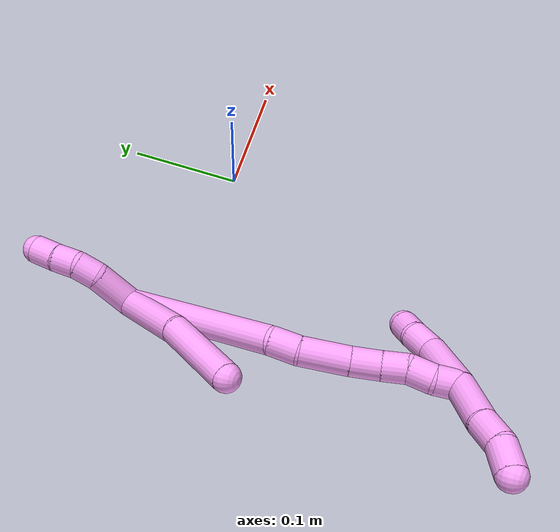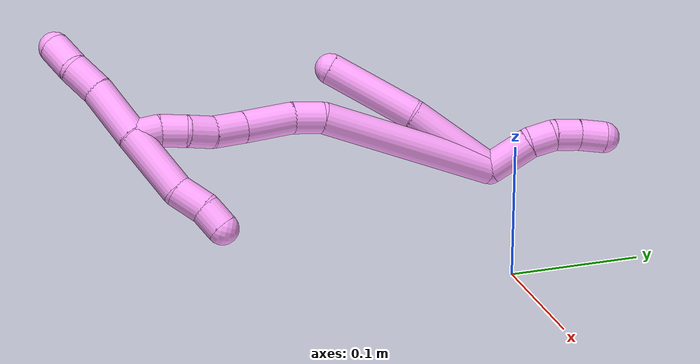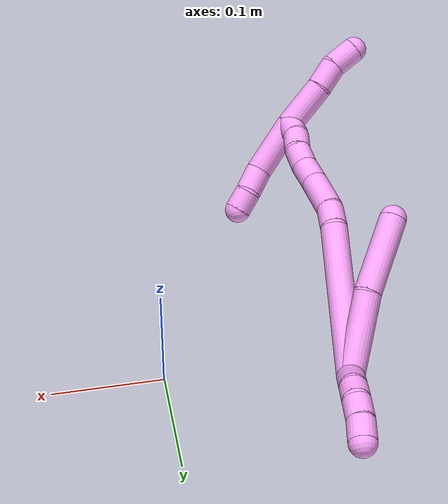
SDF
<sdf version="1.7">
 <world name="default">
  <model name="4">
   <static>0</static>
   <link name="4">
    <collision name="collision-cylinder-e_1_2_8">
     <pose>0.011732 0.008891 -0.034618 -2.89018 0.317152 -1.80409</pose>
     <geometry><cylinder><radius>0.0125</radius><length>0.075236</length></cylinder></geometry>
     <surface>
      <friction><ode><mu>1.16</mu><mu2>1.16</mu2><slip1>0</slip1><slip2>0</slip2></ode></friction>
      <contact><ode><kp>1e+06</kp><kd>1</kd><max_vel>0</max_vel><min_depth>0.001</min_depth></ode></contact>
     </surface>
    </collision>
    <visual name="visual-cylinder-e_1_2_8">
     <pose>0.011732 0.008891 -0.034618 -2.89018 0.317152 -1.80409</pose>
     <geometry><cylinder><radius>0.0125</radius><length>0.075236</length></cylinder></geometry>
     <material><ambient>1 0.65098 0.996078 1</ambient></material>
    </visual>
    <collision name="collision-cylinder-e_2_8_6">
     <pose>0.038847 0.020738 -0.103178 -3.05476 0.424118 -2.74337</pose>
     <geometry><cylinder><radius>0.0125</radius><length>0.074764</length></cylinder></geometry>
     <surface>
      <friction><ode><mu>1.16</mu><mu2>1.16</mu2><slip1>0</slip1><slip2>0</slip2></ode></friction>
      <contact><ode><kp>1e+06</kp><kd>1</kd><max_vel>0</max_vel><min_depth>0.001</min_depth></ode></contact>
     </surface>
    </collision>
    <visual name="visual-cylinder-e_2_8_6">
     <pose>0.038847 0.020738 -0.103178 -3.05476 0.424118 -2.74337</pose>
     <geometry><cylinder><radius>0.0125</radius><length>0.074764</length></cylinder></geometry>
     <material><ambient>1 0.65098 0.996078 1</ambient></material>
    </visual>
    <collision name="collision-cylinder-e_1_2_9">
     <pose>0.000677 0.015139 0.011486 -0.92173 0.035597 -0.017676</pose>
     <geometry><cylinder><radius>0.0125</radius><length>0.03803</length></cylinder></geometry>
     <surface>
      <friction><ode><mu>1.16</mu><mu2>1.16</mu2><slip1>0</slip1><slip2>0</slip2></ode></friction>
      <contact><ode><kp>1e+06</kp><kd>1</kd><max_vel>0</max_vel><min_depth>0.001</min_depth></ode></contact>
     </surface>
    </collision>
    <visual name="visual-cylinder-e_1_2_9">
     <pose>0.000677 0.015139 0.011486 -0.92173 0.035597 -0.017676</pose>
     <geometry><cylinder><radius>0.0125</radius><length>0.03803</length></cylinder></geometry>
     <material><ambient>1 0.65098 0.996078 1</ambient></material>
    </visual>
    <collision name="collision-cylinder-e_2_9_10">
     <pose>0.001946 0.035922 0.031271 -0.597313 0.059011 -0.018172</pose>
     <geometry><cylinder><radius>0.0125</radius><length>0.020109</length></cylinder></geometry>
     <surface>
      <friction><ode><mu>1.16</mu><mu2>1.16</mu2><slip1>0</slip1><slip2>0</slip2></ode></friction>
      <contact><ode><kp>1e+06</kp><kd>1</kd><max_vel>0</max_vel><min_depth>0.001</min_depth></ode></contact>
     </surface>
    </collision>
    <visual name="visual-cylinder-e_2_9_10">
     <pose>0.001946 0.035922 0.031271 -0.597313 0.059011 -0.018172</pose>
     <geometry><cylinder><radius>0.0125</radius><length>0.020109</length></cylinder></geometry>
     <material><ambient>1 0.65098 0.996078 1</ambient></material>
    </visual>
    <collision name="collision-cylinder-e_3_10_11">
     <pose>0.003308 0.044122 0.049378 -0.254845 0.075668 -0.009699</pose>
     <geometry><cylinder><radius>0.0125</radius><length>0.020328</length></cylinder></geometry>
     <surface>
      <friction><ode><mu>1.16</mu><mu2>1.16</mu2><slip1>0</slip1><slip2>0</slip2></ode></friction>
      <contact><ode><kp>1e+06</kp><kd>1</kd><max_vel>0</max_vel><min_depth>0.001</min_depth></ode></contact>
     </surface>
    </collision>
    <visual name="visual-cylinder-e_3_10_11">
     <pose>0.003308 0.044122 0.049378 -0.254845 0.075668 -0.009699</pose>
     <geometry><cylinder><radius>0.0125</radius><length>0.020328</length></cylinder></geometry>
     <material><ambient>1 0.65098 0.996078 1</ambient></material>
    </visual>
    <collision name="collision-cylinder-e_4_11_5">
     <pose>0.003804 0.048703 0.069757 -0.189302 -0.025311 0.002403</pose>
     <geometry><cylinder><radius>0.0125</radius><length>0.021533</length></cylinder></geometry>
     <surface>
      <friction><ode><mu>1.16</mu><mu2>1.16</mu2><slip1>0</slip1><slip2>0</slip2></ode></friction>
      <contact><ode><kp>1e+06</kp><kd>1</kd><max_vel>0</max_vel><min_depth>0.001</min_depth></ode></contact>
     </surface>
    </collision>
    <visual name="visual-cylinder-e_4_11_5">
     <pose>0.003804 0.048703 0.069757 -0.189302 -0.025311 0.002403</pose>
     <geometry><cylinder><radius>0.0125</radius><length>0.021533</length></cylinder></geometry>
     <material><ambient>1 0.65098 0.996078 1</ambient></material>
    </visual>
    <collision name="collision-cylinder-e_1_2_12">
     <pose>0.000494 0.002577 -0.072556 -3.10609 0.006798 -0.37832</pose>
     <geometry><cylinder><radius>0.0125</radius><length>0.145206</length></cylinder></geometry>
     <surface>
      <friction><ode><mu>1.16</mu><mu2>1.16</mu2><slip1>0</slip1><slip2>0</slip2></ode></friction>
      <contact><ode><kp>1e+06</kp><kd>1</kd><max_vel>0</max_vel><min_depth>0.001</min_depth></ode></contact>
     </surface>
    </collision>
    <visual name="visual-cylinder-e_1_2_12">
     <pose>0.000494 0.002577 -0.072556 -3.10609 0.006798 -0.37832</pose>
     <geometry><cylinder><radius>0.0125</radius><length>0.145206</length></cylinder></geometry>
     <material><ambient>1 0.65098 0.996078 1</ambient></material>
    </visual>
    <collision name="collision-cylinder-e_2_12_13">
     <pose>0.000181 0.002071 -0.156976 2.88731 -0.065672 -0.503045</pose>
     <geometry><cylinder><radius>0.0125</radius><length>0.024571</length></cylinder></geometry>
     <surface>
      <friction><ode><mu>1.16</mu><mu2>1.16</mu2><slip1>0</slip1><slip2>0</slip2></ode></friction>
      <contact><ode><kp>1e+06</kp><kd>1</kd><max_vel>0</max_vel><min_depth>0.001</min_depth></ode></contact>
     </surface>
    </collision>
    <visual name="visual-cylinder-e_2_12_13">
     <pose>0.000181 0.002071 -0.156976 2.88731 -0.065672 -0.503045</pose>
     <geometry><cylinder><radius>0.0125</radius><length>0.024571</length></cylinder></geometry>
     <material><ambient>1 0.65098 0.996078 1</ambient></material>
    </visual>
    <collision name="collision-cylinder-e_3_13_14">
     <pose>-0.006272 -0.007583 -0.187566 2.80414 -0.277244 -1.37247</pose>
     <geometry><cylinder><radius>0.0125</radius><length>0.041264</length></cylinder></geometry>
     <surface>
      <friction><ode><mu>1.16</mu><mu2>1.16</mu2><slip1>0</slip1><slip2>0</slip2></ode></friction>
      <contact><ode><kp>1e+06</kp><kd>1</kd><max_vel>0</max_vel><min_depth>0.001</min_depth></ode></contact>
     </surface>
    </collision>
    <visual name="visual-cylinder-e_3_13_14">
     <pose>-0.006272 -0.007583 -0.187566 2.80414 -0.277244 -1.37247</pose>
     <geometry><cylinder><radius>0.0125</radius><length>0.041264</length></cylinder></geometry>
     <material><ambient>1 0.65098 0.996078 1</ambient></material>
    </visual>
    <collision name="collision-cylinder-e_4_14_15">
     <pose>-0.015907 -0.017619 -0.217987 2.85349 -0.315935 -1.66431</pose>
     <geometry><cylinder><radius>0.0125</radius><length>0.025667</length></cylinder></geometry>
     <surface>
      <friction><ode><mu>1.16</mu><mu2>1.16</mu2><slip1>0</slip1><slip2>0</slip2></ode></friction>
      <contact><ode><kp>1e+06</kp><kd>1</kd><max_vel>0</max_vel><min_depth>0.001</min_depth></ode></contact>
     </surface>
    </collision>
    <visual name="visual-cylinder-e_4_14_15">
     <pose>-0.015907 -0.017619 -0.217987 2.85349 -0.315935 -1.66431</pose>
     <geometry><cylinder><radius>0.0125</radius><length>0.025667</length></cylinder></geometry>
     <material><ambient>1 0.65098 0.996078 1</ambient></material>
    </visual>
    <collision name="collision-cylinder-e_5_15_16">
     <pose>-0.022515 -0.02208 -0.24015 3.04684 -0.244217 -2.40426</pose>
     <geometry><cylinder><radius>0.0125</radius><length>0.021674</length></cylinder></geometry>
     <surface>
      <friction><ode><mu>1.16</mu><mu2>1.16</mu2><slip1>0</slip1><slip2>0</slip2></ode></friction>
      <contact><ode><kp>1e+06</kp><kd>1</kd><max_vel>0</max_vel><min_depth>0.001</min_depth></ode></contact>
     </surface>
    </collision>
    <visual name="visual-cylinder-e_5_15_16">
     <pose>-0.022515 -0.02208 -0.24015 3.04684 -0.244217 -2.40426</pose>
     <geometry><cylinder><radius>0.0125</radius><length>0.021674</length></cylinder></geometry>
     <material><ambient>1 0.65098 0.996078 1</ambient></material>
    </visual>
    <collision name="collision-cylinder-e_6_16_17">
     <pose>-0.025142 -0.025708 -0.260625 2.88433 -0.000697 -0.005392</pose>
     <geometry><cylinder><radius>0.0125</radius><length>0.020694</length></cylinder></geometry>
     <surface>
      <friction><ode><mu>1.16</mu><mu2>1.16</mu2><slip1>0</slip1><slip2>0</slip2></ode></friction>
      <contact><ode><kp>1e+06</kp><kd>1</kd><max_vel>0</max_vel><min_depth>0.001</min_depth></ode></contact>
     </surface>
    </collision>
    <visual name="visual-cylinder-e_6_16_17">
     <pose>-0.025142 -0.025708 -0.260625 2.88433 -0.000697 -0.005392</pose>
     <geometry><cylinder><radius>0.0125</radius><length>0.020694</length></cylinder></geometry>
     <material><ambient>1 0.65098 0.996078 1</ambient></material>
    </visual>
    <collision name="collision-cylinder-e_7_17_1">
     <pose>-0.027962 -0.032059 -0.279997 2.76365 -0.272167 -1.24272</pose>
     <geometry><cylinder><radius>0.0125</radius><length>0.020924</length></cylinder></geometry>
     <surface>
      <friction><ode><mu>1.16</mu><mu2>1.16</mu2><slip1>0</slip1><slip2>0</slip2></ode></friction>
      <contact><ode><kp>1e+06</kp><kd>1</kd><max_vel>0</max_vel><min_depth>0.001</min_depth></ode></contact>
     </surface>
    </collision>
    <visual name="visual-cylinder-e_7_17_1">
     <pose>-0.027962 -0.032059 -0.279997 2.76365 -0.272167 -1.24272</pose>
     <geometry><cylinder><radius>0.0125</radius><length>0.020924</length></cylinder></geometry>
     <material><ambient>1 0.65098 0.996078 1</ambient></material>
    </visual>
    <collision name="collision-cylinder-e_1_1_18">
     <pose>-0.01403 -0.029024 -0.304451 -2.72075 0.791825 -2.19681</pose>
     <geometry><cylinder><radius>0.0125</radius><length>0.047059</length></cylinder></geometry>
     <surface>
      <friction><ode><mu>1.16</mu><mu2>1.16</mu2><slip1>0</slip1><slip2>0</slip2></ode></friction>
      <contact><ode><kp>1e+06</kp><kd>1</kd><max_vel>0</max_vel><min_depth>0.001</min_depth></ode></contact>
     </surface>
    </collision>
    <visual name="visual-cylinder-e_1_1_18">
     <pose>-0.01403 -0.029024 -0.304451 -2.72075 0.791825 -2.19681</pose>
     <geometry><cylinder><radius>0.0125</radius><length>0.047059</length></cylinder></geometry>
     <material><ambient>1 0.65098 0.996078 1</ambient></material>
    </visual>
    <collision name="collision-cylinder-e_2_18_19">
     <pose>0.01085 -0.019573 -0.329471 -2.87638 0.668901 -2.40858</pose>
     <geometry><cylinder><radius>0.0125</radius><length>0.026236</length></cylinder></geometry>
     <surface>
      <friction><ode><mu>1.16</mu><mu2>1.16</mu2><slip1>0</slip1><slip2>0</slip2></ode></friction>
      <contact><ode><kp>1e+06</kp><kd>1</kd><max_vel>0</max_vel><min_depth>0.001</min_depth></ode></contact>
     </surface>
    </collision>
    <visual name="visual-cylinder-e_2_18_19">
     <pose>0.01085 -0.019573 -0.329471 -2.87638 0.668901 -2.40858</pose>
     <geometry><cylinder><radius>0.0125</radius><length>0.026236</length></cylinder></geometry>
     <material><ambient>1 0.65098 0.996078 1</ambient></material>
    </visual>
    <collision name="collision-cylinder-e_3_19_4">
     <pose>0.030046 -0.015591 -0.34677 -2.96895 0.97629 -2.8185</pose>
     <geometry><cylinder><radius>0.0125</radius><length>0.026704</length></cylinder></geometry>
     <surface>
      <friction><ode><mu>1.16</mu><mu2>1.16</mu2><slip1>0</slip1><slip2>0</slip2></ode></friction>
      <contact><ode><kp>1e+06</kp><kd>1</kd><max_vel>0</max_vel><min_depth>0.001</min_depth></ode></contact>
     </surface>
    </collision>
    <visual name="visual-cylinder-e_3_19_4">
     <pose>0.030046 -0.015591 -0.34677 -2.96895 0.97629 -2.8185</pose>
     <geometry><cylinder><radius>0.0125</radius><length>0.026704</length></cylinder></geometry>
     <material><ambient>1 0.65098 0.996078 1</ambient></material>
    </visual>
    <collision name="collision-cylinder-e_1_1_20">
     <pose>-0.048399 -0.04448 -0.270327 0.428826 -0.699844 -0.158605</pose>
     <geometry><cylinder><radius>0.0125</radius><length>0.054726</length></cylinder></geometry>
     <surface>
      <friction><ode><mu>1.16</mu><mu2>1.16</mu2><slip1>0</slip1><slip2>0</slip2></ode></friction>
      <contact><ode><kp>1e+06</kp><kd>1</kd><max_vel>0</max_vel><min_depth>0.001</min_depth></ode></contact>
     </surface>
    </collision>
    <visual name="visual-cylinder-e_1_1_20">
     <pose>-0.048399 -0.04448 -0.270327 0.428826 -0.699844 -0.158605</pose>
     <geometry><cylinder><radius>0.0125</radius><length>0.054726</length></cylinder></geometry>
     <material><ambient>1 0.65098 0.996078 1</ambient></material>
    </visual>
    <collision name="collision-cylinder-e_2_20_21">
     <pose>-0.072379 -0.054485 -0.240546 0.120556 -0.530963 -0.032816</pose>
     <geometry><cylinder><radius>0.0125</radius><length>0.025103</length></cylinder></geometry>
     <surface>
      <friction><ode><mu>1.16</mu><mu2>1.16</mu2><slip1>0</slip1><slip2>0</slip2></ode></friction>
      <contact><ode><kp>1e+06</kp><kd>1</kd><max_vel>0</max_vel><min_depth>0.001</min_depth></ode></contact>
     </surface>
    </collision>
    <visual name="visual-cylinder-e_2_20_21">
     <pose>-0.072379 -0.054485 -0.240546 0.120556 -0.530963 -0.032816</pose>
     <geometry><cylinder><radius>0.0125</radius><length>0.025103</length></cylinder></geometry>
     <material><ambient>1 0.65098 0.996078 1</ambient></material>
    </visual>
    <collision name="collision-cylinder-e_3_21_3">
     <pose>-0.084745 -0.059022 -0.222377 0.410988 -0.638464 -0.137574</pose>
     <geometry><cylinder><radius>0.0125</radius><length>0.020171</length></cylinder></geometry>
     <surface>
      <friction><ode><mu>1.16</mu><mu2>1.16</mu2><slip1>0</slip1><slip2>0</slip2></ode></friction>
      <contact><ode><kp>1e+06</kp><kd>1</kd><max_vel>0</max_vel><min_depth>0.001</min_depth></ode></contact>
     </surface>
    </collision>
    <visual name="visual-cylinder-e_3_21_3">
     <pose>-0.084745 -0.059022 -0.222377 0.410988 -0.638464 -0.137574</pose>
     <geometry><cylinder><radius>0.0125</radius><length>0.020171</length></cylinder></geometry>
     <material><ambient>1 0.65098 0.996078 1</ambient></material>
    </visual>
    <collision name="collision-sphere-3">
     <pose>-0.090756 -0.062258 -0.214953 0 -0 0</pose>
     <geometry><sphere><radius>0.0125</radius></sphere></geometry>
     <surface>
      <friction><ode><mu>1.16</mu><mu2>1.16</mu2><slip1>0</slip1><slip2>0</slip2></ode></friction>
      <contact><ode><kp>1e+06</kp><kd>1</kd><max_vel>0</max_vel><min_depth>0.001</min_depth></ode></contact>
     </surface>
    </collision>
    <visual name="visual-sphere-3">
     <pose>-0.090756 -0.062258 -0.214953 0 -0 0</pose>
     <geometry><sphere><radius>0.0125</radius></sphere></geometry>
     <material><ambient>1 0.65098 0.996078 1</ambient></material>
    </visual>
    <collision name="collision-sphere-21">
     <pose>-0.078735 -0.055787 -0.229801 0 -0 0</pose>
     <geometry><sphere><radius>0.0125</radius></sphere></geometry>
     <surface>
      <friction><ode><mu>1.16</mu><mu2>1.16</mu2><slip1>0</slip1><slip2>0</slip2></ode></friction>
      <contact><ode><kp>1e+06</kp><kd>1</kd><max_vel>0</max_vel><min_depth>0.001</min_depth></ode></contact>
     </surface>
    </collision>
    <visual name="visual-sphere-21">
     <pose>-0.078735 -0.055787 -0.229801 0 -0 0</pose>
     <geometry><sphere><radius>0.0125</radius></sphere></geometry>
     <material><ambient>1 0.65098 0.996078 1</ambient></material>
    </visual>
    <collision name="collision-sphere-20">
     <pose>-0.066023 -0.053183 -0.251291 0 -0 0</pose>
     <geometry><sphere><radius>0.0125</radius></sphere></geometry>
     <surface>
      <friction><ode><mu>1.16</mu><mu2>1.16</mu2><slip1>0</slip1><slip2>0</slip2></ode></friction>
      <contact><ode><kp>1e+06</kp><kd>1</kd><max_vel>0</max_vel><min_depth>0.001</min_depth></ode></contact>
     </surface>
    </collision>
    <visual name="visual-sphere-20">
     <pose>-0.066023 -0.053183 -0.251291 0 -0 0</pose>
     <geometry><sphere><radius>0.0125</radius></sphere></geometry>
     <material><ambient>1 0.65098 0.996078 1</ambient></material>
    </visual>
    <collision name="collision-sphere-4">
     <pose>0.041107 -0.014306 -0.354137 0 -0 0</pose>
     <geometry><sphere><radius>0.0125</radius></sphere></geometry>
     <surface>
      <friction><ode><mu>1.16</mu><mu2>1.16</mu2><slip1>0</slip1><slip2>0</slip2></ode></friction>
      <contact><ode><kp>1e+06</kp><kd>1</kd><max_vel>0</max_vel><min_depth>0.001</min_depth></ode></contact>
     </surface>
    </collision>
    <visual name="visual-sphere-4">
     <pose>0.041107 -0.014306 -0.354137 0 -0 0</pose>
     <geometry><sphere><radius>0.0125</radius></sphere></geometry>
     <material><ambient>1 0.65098 0.996078 1</ambient></material>
    </visual>
    <collision name="collision-sphere-11">
     <pose>0.004076 0.046677 0.059186 0 -0 0</pose>
     <geometry><sphere><radius>0.0125</radius></sphere></geometry>
     <surface>
      <friction><ode><mu>1.16</mu><mu2>1.16</mu2><slip1>0</slip1><slip2>0</slip2></ode></friction>
      <contact><ode><kp>1e+06</kp><kd>1</kd><max_vel>0</max_vel><min_depth>0.001</min_depth></ode></contact>
     </surface>
    </collision>
    <visual name="visual-sphere-11">
     <pose>0.004076 0.046677 0.059186 0 -0 0</pose>
     <geometry><sphere><radius>0.0125</radius></sphere></geometry>
     <material><ambient>1 0.65098 0.996078 1</ambient></material>
    </visual>
    <collision name="collision-sphere-10">
     <pose>0.002539 0.041567 0.039571 0 -0 0</pose>
     <geometry><sphere><radius>0.0125</radius></sphere></geometry>
     <surface>
      <friction><ode><mu>1.16</mu><mu2>1.16</mu2><slip1>0</slip1><slip2>0</slip2></ode></friction>
      <contact><ode><kp>1e+06</kp><kd>1</kd><max_vel>0</max_vel><min_depth>0.001</min_depth></ode></contact>
     </surface>
    </collision>
    <visual name="visual-sphere-10">
     <pose>0.002539 0.041567 0.039571 0 -0 0</pose>
     <geometry><sphere><radius>0.0125</radius></sphere></geometry>
     <material><ambient>1 0.65098 0.996078 1</ambient></material>
    </visual>
    <collision name="collision-sphere-6">
     <pose>0.05423 0.023692 -0.13712 0 -0 0</pose>
     <geometry><sphere><radius>0.0125</radius></sphere></geometry>
     <surface>
      <friction><ode><mu>1.16</mu><mu2>1.16</mu2><slip1>0</slip1><slip2>0</slip2></ode></friction>
      <contact><ode><kp>1e+06</kp><kd>1</kd><max_vel>0</max_vel><min_depth>0.001</min_depth></ode></contact>
     </surface>
    </collision>
    <visual name="visual-sphere-6">
     <pose>0.05423 0.023692 -0.13712 0 -0 0</pose>
     <geometry><sphere><radius>0.0125</radius></sphere></geometry>
     <material><ambient>1 0.65098 0.996078 1</ambient></material>
    </visual>
    <collision name="collision-sphere-9">
     <pose>0.001353 0.030277 0.022972 0 -0 0</pose>
     <geometry><sphere><radius>0.0125</radius></sphere></geometry>
     <surface>
      <friction><ode><mu>1.16</mu><mu2>1.16</mu2><slip1>0</slip1><slip2>0</slip2></ode></friction>
      <contact><ode><kp>1e+06</kp><kd>1</kd><max_vel>0</max_vel><min_depth>0.001</min_depth></ode></contact>
     </surface>
    </collision>
    <visual name="visual-sphere-9">
     <pose>0.001353 0.030277 0.022972 0 -0 0</pose>
     <geometry><sphere><radius>0.0125</radius></sphere></geometry>
     <material><ambient>1 0.65098 0.996078 1</ambient></material>
    </visual>
    <collision name="collision-sphere-2">
     <geometry><sphere><radius>0.0125</radius></sphere></geometry>
     <surface>
      <friction><ode><mu>1.16</mu><mu2>1.16</mu2><slip1>0</slip1><slip2>0</slip2></ode></friction>
      <contact><ode><kp>1e+06</kp><kd>1</kd><max_vel>0</max_vel><min_depth>0.001</min_depth></ode></contact>
     </surface>
    </collision>
    <visual name="visual-sphere-2">
     <geometry><sphere><radius>0.0125</radius></sphere></geometry>
     <material><ambient>1 0.65098 0.996078 1</ambient></material>
    </visual>
    <collision name="collision-sphere-19">
     <pose>0.018985 -0.016875 -0.339403 0 -0 0</pose>
     <geometry><sphere><radius>0.0125</radius></sphere></geometry>
     <surface>
      <friction><ode><mu>1.16</mu><mu2>1.16</mu2><slip1>0</slip1><slip2>0</slip2></ode></friction>
      <contact><ode><kp>1e+06</kp><kd>1</kd><max_vel>0</max_vel><min_depth>0.001</min_depth></ode></contact>
     </surface>
    </collision>
    <visual name="visual-sphere-19">
     <pose>0.018985 -0.016875 -0.339403 0 -0 0</pose>
     <geometry><sphere><radius>0.0125</radius></sphere></geometry>
     <material><ambient>1 0.65098 0.996078 1</ambient></material>
    </visual>
    <collision name="collision-sphere-8">
     <pose>0.023463 0.017783 -0.069236 0 -0 0</pose>
     <geometry><sphere><radius>0.0125</radius></sphere></geometry>
     <surface>
      <friction><ode><mu>1.16</mu><mu2>1.16</mu2><slip1>0</slip1><slip2>0</slip2></ode></friction>
      <contact><ode><kp>1e+06</kp><kd>1</kd><max_vel>0</max_vel><min_depth>0.001</min_depth></ode></contact>
     </surface>
    </collision>
    <visual name="visual-sphere-8">
     <pose>0.023463 0.017783 -0.069236 0 -0 0</pose>
     <geometry><sphere><radius>0.0125</radius></sphere></geometry>
     <material><ambient>1 0.65098 0.996078 1</ambient></material>
    </visual>
    <collision name="collision-sphere-5">
     <pose>0.003531 0.050728 0.080327 0 -0 0</pose>
     <geometry><sphere><radius>0.0125</radius></sphere></geometry>
     <surface>
      <friction><ode><mu>1.16</mu><mu2>1.16</mu2><slip1>0</slip1><slip2>0</slip2></ode></friction>
      <contact><ode><kp>1e+06</kp><kd>1</kd><max_vel>0</max_vel><min_depth>0.001</min_depth></ode></contact>
     </surface>
    </collision>
    <visual name="visual-sphere-5">
     <pose>0.003531 0.050728 0.080327 0 -0 0</pose>
     <geometry><sphere><radius>0.0125</radius></sphere></geometry>
     <material><ambient>1 0.65098 0.996078 1</ambient></material>
    </visual>
    <collision name="collision-sphere-12">
     <pose>0.000987 0.005154 -0.145111 0 -0 0</pose>
     <geometry><sphere><radius>0.0125</radius></sphere></geometry>
     <surface>
      <friction><ode><mu>1.16</mu><mu2>1.16</mu2><slip1>0</slip1><slip2>0</slip2></ode></friction>
      <contact><ode><kp>1e+06</kp><kd>1</kd><max_vel>0</max_vel><min_depth>0.001</min_depth></ode></contact>
     </surface>
    </collision>
    <visual name="visual-sphere-12">
     <pose>0.000987 0.005154 -0.145111 0 -0 0</pose>
     <geometry><sphere><radius>0.0125</radius></sphere></geometry>
     <material><ambient>1 0.65098 0.996078 1</ambient></material>
    </visual>
    <collision name="collision-sphere-13">
     <pose>-0.000625 -0.001013 -0.168841 0 -0 0</pose>
     <geometry><sphere><radius>0.0125</radius></sphere></geometry>
     <surface>
      <friction><ode><mu>1.16</mu><mu2>1.16</mu2><slip1>0</slip1><slip2>0</slip2></ode></friction>
      <contact><ode><kp>1e+06</kp><kd>1</kd><max_vel>0</max_vel><min_depth>0.001</min_depth></ode></contact>
     </surface>
    </collision>
    <visual name="visual-sphere-13">
     <pose>-0.000625 -0.001013 -0.168841 0 -0 0</pose>
     <geometry><sphere><radius>0.0125</radius></sphere></geometry>
     <material><ambient>1 0.65098 0.996078 1</ambient></material>
    </visual>
    <collision name="collision-sphere-14">
     <pose>-0.01192 -0.014153 -0.206291 0 -0 0</pose>
     <geometry><sphere><radius>0.0125</radius></sphere></geometry>
     <surface>
      <friction><ode><mu>1.16</mu><mu2>1.16</mu2><slip1>0</slip1><slip2>0</slip2></ode></friction>
      <contact><ode><kp>1e+06</kp><kd>1</kd><max_vel>0</max_vel><min_depth>0.001</min_depth></ode></contact>
     </surface>
    </collision>
    <visual name="visual-sphere-14">
     <pose>-0.01192 -0.014153 -0.206291 0 -0 0</pose>
     <geometry><sphere><radius>0.0125</radius></sphere></geometry>
     <material><ambient>1 0.65098 0.996078 1</ambient></material>
    </visual>
    <collision name="collision-sphere-15">
     <pose>-0.019894 -0.021085 -0.229682 0 -0 0</pose>
     <geometry><sphere><radius>0.0125</radius></sphere></geometry>
     <surface>
      <friction><ode><mu>1.16</mu><mu2>1.16</mu2><slip1>0</slip1><slip2>0</slip2></ode></friction>
      <contact><ode><kp>1e+06</kp><kd>1</kd><max_vel>0</max_vel><min_depth>0.001</min_depth></ode></contact>
     </surface>
    </collision>
    <visual name="visual-sphere-15">
     <pose>-0.019894 -0.021085 -0.229682 0 -0 0</pose>
     <geometry><sphere><radius>0.0125</radius></sphere></geometry>
     <material><ambient>1 0.65098 0.996078 1</ambient></material>
    </visual>
    <collision name="collision-sphere-16">
     <pose>-0.025135 -0.023075 -0.250618 0 -0 0</pose>
     <geometry><sphere><radius>0.0125</radius></sphere></geometry>
     <surface>
      <friction><ode><mu>1.16</mu><mu2>1.16</mu2><slip1>0</slip1><slip2>0</slip2></ode></friction>
      <contact><ode><kp>1e+06</kp><kd>1</kd><max_vel>0</max_vel><min_depth>0.001</min_depth></ode></contact>
     </surface>
    </collision>
    <visual name="visual-sphere-16">
     <pose>-0.025135 -0.023075 -0.250618 0 -0 0</pose>
     <geometry><sphere><radius>0.0125</radius></sphere></geometry>
     <material><ambient>1 0.65098 0.996078 1</ambient></material>
    </visual>
    <collision name="collision-sphere-17">
     <pose>-0.02515 -0.02834 -0.270632 0 -0 0</pose>
     <geometry><sphere><radius>0.0125</radius></sphere></geometry>
     <surface>
      <friction><ode><mu>1.16</mu><mu2>1.16</mu2><slip1>0</slip1><slip2>0</slip2></ode></friction>
      <contact><ode><kp>1e+06</kp><kd>1</kd><max_vel>0</max_vel><min_depth>0.001</min_depth></ode></contact>
     </surface>
    </collision>
    <visual name="visual-sphere-17">
     <pose>-0.02515 -0.02834 -0.270632 0 -0 0</pose>
     <geometry><sphere><radius>0.0125</radius></sphere></geometry>
     <material><ambient>1 0.65098 0.996078 1</ambient></material>
    </visual>
    <collision name="collision-sphere-1">
     <pose>-0.030774 -0.035777 -0.289363 0 -0 0</pose>
     <geometry><sphere><radius>0.0125</radius></sphere></geometry>
     <surface>
      <friction><ode><mu>1.16</mu><mu2>1.16</mu2><slip1>0</slip1><slip2>0</slip2></ode></friction>
      <contact><ode><kp>1e+06</kp><kd>1</kd><max_vel>0</max_vel><min_depth>0.001</min_depth></ode></contact>
     </surface>
    </collision>
    <visual name="visual-sphere-1">
     <pose>-0.030774 -0.035777 -0.289363 0 -0 0</pose>
     <geometry><sphere><radius>0.0125</radius></sphere></geometry>
     <material><ambient>1 0.65098 0.996078 1</ambient></material>
    </visual>
    <collision name="collision-sphere-18">
     <pose>0.002715 -0.02227 -0.31954 0 -0 0</pose>
     <geometry><sphere><radius>0.0125</radius></sphere></geometry>
     <surface>
      <friction><ode><mu>1.16</mu><mu2>1.16</mu2><slip1>0</slip1><slip2>0</slip2></ode></friction>
      <contact><ode><kp>1e+06</kp><kd>1</kd><max_vel>0</max_vel><min_depth>0.001</min_depth></ode></contact>
     </surface>
    </collision>
    <visual name="visual-sphere-18">
     <pose>0.002715 -0.02227 -0.31954 0 -0 0</pose>
     <geometry><sphere><radius>0.0125</radius></sphere></geometry>
     <material><ambient>1 0.65098 0.996078 1</ambient></material>
    </visual>
    <inertial>
     <pose>-0.005242 -0.005129 -0.144641 0 -0 0</pose>
     <mass>0.75</mass>
     <inertia><ixx>6e-05</ixx><ixy>0</ixy><ixz>0</ixz><iyy>-0.000324</iyy><iyz>0</iyz><izz>-7.2e-05</izz></inertia>
    </inertial>
   </link>
   <pose>-0.157692 0.042428 0.01931 1.9131 -0.13792 2.9856</pose>
  </model>
 </world>
</sdf>
